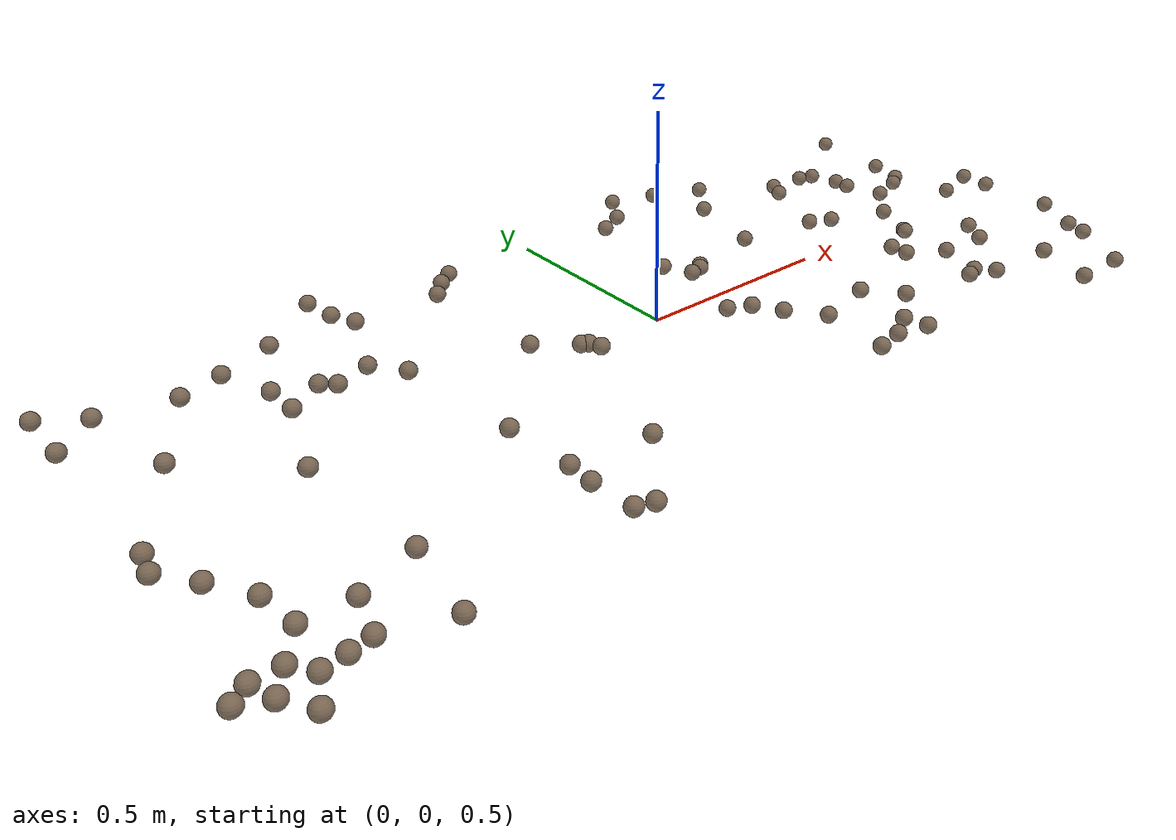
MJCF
<mujoco>
   <asset>
      <material name="dust_material" rgba="0.4 0.3 0.2 0.8" />
  </asset>
  <worldbody>
    <body name="ball_1" pos="-0.5133 -0.52 0.51">
      <freejoint/>
      <inertial mass="0.53" diaginertia="8.48e-05 8.48e-05 8.48e-05" pos="0 0 0"/>
      <geom type="sphere" size="0.02" material="dust_material"/>
    </body>
    <body name="ball_2" pos="0.7296 -0.3315 0.51">
      <freejoint/>
      <inertial mass="0.53" diaginertia="8.48e-05 8.48e-05 8.48e-05" pos="0 0 0"/>
      <geom type="sphere" size="0.02" material="dust_material"/>
    </body>
    <body name="ball_3" pos="-0.8236 0.1822 0.51">
      <freejoint/>
      <inertial mass="0.53" diaginertia="8.480000000000001e-05 8.480000000000001e-05 8.480000000000001e-05" pos="0 0 0"/>
      <geom type="sphere" size="0.02" material="dust_material"/>
   </body>
   <body name="ball_4" pos="0.4596 -0.2143 0.51">
      <freejoint/>
      <inertial mass="0.53" diaginertia="8.480000000000001e-05 8.480000000000001e-05 8.480000000000001e-05" pos="0 0 0"/>
      <geom type="sphere" size="0.02" material="dust_material"/>
   </body>
   <body name="ball_5" pos="0.152 -0.0756 0.51">
      <freejoint/>
      <inertial mass="0.53" diaginertia="8.480000000000001e-05 8.480000000000001e-05 8.480000000000001e-05" pos="0 0 0"/>
      <geom type="sphere" size="0.02" material="dust_material"/>
   </body>
   <body name="ball_6" pos="0.2438 -0.1683 0.51">
      <freejoint/>
      <inertial mass="0.53" diaginertia="8.480000000000001e-05 8.480000000000001e-05 8.480000000000001e-05" pos="0 0 0"/>
      <geom type="sphere" size="0.02" material="dust_material"/>
   </body>
   <body name="ball_7" pos="0.2067 -0.102 0.51">
      <freejoint/>
      <inertial mass="0.53" diaginertia="8.480000000000001e-05 8.480000000000001e-05 8.480000000000001e-05" pos="0 0 0"/>
      <geom type="sphere" size="0.02" material="dust_material"/>
   </body>
   <body name="ball_8" pos="-0.5191 -0.3404 0.51">
      <freejoint/>
      <inertial mass="0.53" diaginertia="8.480000000000001e-05 8.480000000000001e-05 8.480000000000001e-05" pos="0 0 0"/>
      <geom type="sphere" size="0.02" material="dust_material"/>
   </body>
   <body name="ball_9" pos="0.8695 0.056 0.51">
      <freejoint/>
      <inertial mass="0.53" diaginertia="8.480000000000001e-05 8.480000000000001e-05 8.480000000000001e-05" pos="0 0 0"/>
      <geom type="sphere" size="0.02" material="dust_material"/>
   </body>
   <body name="ball_10" pos="-0.8261 0.2712 0.51">
      <freejoint/>
      <inertial mass="0.53" diaginertia="8.480000000000001e-05 8.480000000000001e-05 8.480000000000001e-05" pos="0 0 0"/>
      <geom type="sphere" size="0.02" material="dust_material"/>
   </body>
   <body name="ball_11" pos="0.4689 0.5483 0.51">
      <freejoint/>
      <inertial mass="0.53" diaginertia="8.480000000000001e-05 8.480000000000001e-05 8.480000000000001e-05" pos="0 0 0"/>
      <geom type="sphere" size="0.02" material="dust_material"/>
   </body>
   <body name="ball_12" pos="-1.2387 -0.4799 0.51">
      <freejoint/>
      <inertial mass="0.53" diaginertia="8.480000000000001e-05 8.480000000000001e-05 8.480000000000001e-05" pos="0 0 0"/>
      <geom type="sphere" size="0.02" material="dust_material"/>
   </body>
   <body name="ball_13" pos="0.813 -0.0625 0.51">
      <freejoint/>
      <inertial mass="0.53" diaginertia="8.480000000000001e-05 8.480000000000001e-05 8.480000000000001e-05" pos="0 0 0"/>
      <geom type="sphere" size="0.02" material="dust_material"/>
   </body>
   <body name="ball_14" pos="0.7222 0.1131 0.51">
      <freejoint/>
      <inertial mass="0.53" diaginertia="8.480000000000001e-05 8.480000000000001e-05 8.480000000000001e-05" pos="0 0 0"/>
      <geom type="sphere" size="0.02" material="dust_material"/>
   </body>
   <body name="ball_15" pos="0.816 -0.0556 0.51">
      <freejoint/>
      <inertial mass="0.53" diaginertia="8.480000000000001e-05 8.480000000000001e-05 8.480000000000001e-05" pos="0 0 0"/>
      <geom type="sphere" size="0.02" material="dust_material"/>
   </body>
   <body name="ball_16" pos="-0.3298 -0.362 0.51">
      <freejoint/>
      <inertial mass="0.53" diaginertia="8.480000000000001e-05 8.480000000000001e-05 8.480000000000001e-05" pos="0 0 0"/>
      <geom type="sphere" size="0.02" material="dust_material"/>
   </body>
   <body name="ball_17" pos="-0.1847 -0.025 0.51">
      <freejoint/>
      <inertial mass="0.53" diaginertia="8.480000000000001e-05 8.480000000000001e-05 8.480000000000001e-05" pos="0 0 0"/>
      <geom type="sphere" size="0.02" material="dust_material"/>
   </body>
   <body name="ball_18" pos="0.9268 -0.2158 0.51">
      <freejoint/>
      <inertial mass="0.53" diaginertia="8.480000000000001e-05 8.480000000000001e-05 8.480000000000001e-05" pos="0 0 0"/>
      <geom type="sphere" size="0.02" material="dust_material"/>
   </body>
   <body name="ball_19" pos="-1.2776 -0.5062 0.51">
      <freejoint/>
      <inertial mass="0.53" diaginertia="8.480000000000001e-05 8.480000000000001e-05 8.480000000000001e-05" pos="0 0 0"/>
      <geom type="sphere" size="0.02" material="dust_material"/>
   </body>
   <body name="ball_20" pos="-0.7388 0.4535 0.51">
      <freejoint/>
      <inertial mass="0.53" diaginertia="8.480000000000001e-05 8.480000000000001e-05 8.480000000000001e-05" pos="0 0 0"/>
      <geom type="sphere" size="0.02" material="dust_material"/>
   </body>
   <body name="ball_21" pos="0.7086 -0.1051 0.51">
      <freejoint/>
      <inertial mass="0.53" diaginertia="8.480000000000001e-05 8.480000000000001e-05 8.480000000000001e-05" pos="0 0 0"/>
      <geom type="sphere" size="0.02" material="dust_material"/>
   </body>
   <body name="ball_22" pos="0.7723 0.375 0.51">
      <freejoint/>
      <inertial mass="0.53" diaginertia="8.480000000000001e-05 8.480000000000001e-05 8.480000000000001e-05" pos="0 0 0"/>
      <geom type="sphere" size="0.02" material="dust_material"/>
   </body>
   <body name="ball_23" pos="-0.2397 0.4991 0.51">
      <freejoint/>
      <inertial mass="0.53" diaginertia="8.480000000000001e-05 8.480000000000001e-05 8.480000000000001e-05" pos="0 0 0"/>
      <geom type="sphere" size="0.02" material="dust_material"/>
   </body>
   <body name="ball_24" pos="0.9622 0.1456 0.51">
      <freejoint/>
      <inertial mass="0.53" diaginertia="8.480000000000001e-05 8.480000000000001e-05 8.480000000000001e-05" pos="0 0 0"/>
      <geom type="sphere" size="0.02" material="dust_material"/>
   </body>
   <body name="ball_25" pos="-1.1435 -0.5267 0.51">
      <freejoint/>
      <inertial mass="0.53" diaginertia="8.480000000000001e-05 8.480000000000001e-05 8.480000000000001e-05" pos="0 0 0"/>
      <geom type="sphere" size="0.02" material="dust_material"/>
   </body>
   <body name="ball_26" pos="1.1215 0.0387 0.51">
      <freejoint/>
      <inertial mass="0.53" diaginertia="8.480000000000001e-05 8.480000000000001e-05 8.480000000000001e-05" pos="0 0 0"/>
      <geom type="sphere" size="0.02" material="dust_material"/>
   </body>
   <body name="ball_27" pos="-0.6188 0.2355 0.51">
      <freejoint/>
      <inertial mass="0.53" diaginertia="8.480000000000001e-05 8.480000000000001e-05 8.480000000000001e-05" pos="0 0 0"/>
      <geom type="sphere" size="0.02" material="dust_material"/>
   </body>
   <body name="ball_28" pos="1.2455 -0.198 0.51">
      <freejoint/>
      <inertial mass="0.53" diaginertia="8.480000000000001e-05 8.480000000000001e-05 8.480000000000001e-05" pos="0 0 0"/>
      <geom type="sphere" size="0.02" material="dust_material"/>
   </body>
   <body name="ball_29" pos="0.6668 0.1406 0.51">
      <freejoint/>
      <inertial mass="0.53" diaginertia="8.480000000000001e-05 8.480000000000001e-05 8.480000000000001e-05" pos="0 0 0"/>
      <geom type="sphere" size="0.02" material="dust_material"/>
   </body>
   <body name="ball_30" pos="0.7091 -0.1517 0.51">
      <freejoint/>
      <inertial mass="0.53" diaginertia="8.480000000000001e-05 8.480000000000001e-05 8.480000000000001e-05" pos="0 0 0"/>
      <geom type="sphere" size="0.02" material="dust_material"/>
   </body>
   <body name="ball_31" pos="1.165 -0.3689 0.51">
      <freejoint/>
      <inertial mass="0.53" diaginertia="8.480000000000001e-05 8.480000000000001e-05 8.480000000000001e-05" pos="0 0 0"/>
      <geom type="sphere" size="0.02" material="dust_material"/>
   </body>
   <body name="ball_32" pos="-1.1219 -0.4064 0.51">
      <freejoint/>
      <inertial mass="0.53" diaginertia="8.480000000000001e-05 8.480000000000001e-05 8.480000000000001e-05" pos="0 0 0"/>
      <geom type="sphere" size="0.02" material="dust_material"/>
   </body>
   <body name="ball_33" pos="0.226 0.4603 0.51">
      <freejoint/>
      <inertial mass="0.53" diaginertia="8.480000000000001e-05 8.480000000000001e-05 8.480000000000001e-05" pos="0 0 0"/>
      <geom type="sphere" size="0.02" material="dust_material"/>
   </body>
   <body name="ball_34" pos="0.935 -0.5185 0.51">
      <freejoint/>
      <inertial mass="0.53" diaginertia="8.480000000000001e-05 8.480000000000001e-05 8.480000000000001e-05" pos="0 0 0"/>
      <geom type="sphere" size="0.02" material="dust_material"/>
   </body>
   <body name="ball_35" pos="0.7971 -0.3613 0.51">
      <freejoint/>
      <inertial mass="0.53" diaginertia="8.480000000000001e-05 8.480000000000001e-05 8.480000000000001e-05" pos="0 0 0"/>
      <geom type="sphere" size="0.02" material="dust_material"/>
   </body>
   <body name="ball_36" pos="0.1872 0.188 0.51">
      <freejoint/>
      <inertial mass="0.53" diaginertia="8.480000000000001e-05 8.480000000000001e-05 8.480000000000001e-05" pos="0 0 0"/>
      <geom type="sphere" size="0.02" material="dust_material"/>
   </body>
   <body name="ball_37" pos="-0.8746 0.4021 0.51">
      <freejoint/>
      <inertial mass="0.53" diaginertia="8.480000000000001e-05 8.480000000000001e-05 8.480000000000001e-05" pos="0 0 0"/>
      <geom type="sphere" size="0.02" material="dust_material"/>
   </body>
   <body name="ball_38" pos="0.7982 -0.2086 0.51">
      <freejoint/>
      <inertial mass="0.53" diaginertia="8.480000000000001e-05 8.480000000000001e-05 8.480000000000001e-05" pos="0 0 0"/>
      <geom type="sphere" size="0.02" material="dust_material"/>
   </body>
   <body name="ball_39" pos="-0.5657 0.4921 0.51">
      <freejoint/>
      <inertial mass="0.53" diaginertia="8.480000000000001e-05 8.480000000000001e-05 8.480000000000001e-05" pos="0 0 0"/>
      <geom type="sphere" size="0.02" material="dust_material"/>
   </body>
   <body name="ball_40" pos="-1.1917 -0.2142 0.51">
      <freejoint/>
      <inertial mass="0.53" diaginertia="8.480000000000001e-05 8.480000000000001e-05 8.480000000000001e-05" pos="0 0 0"/>
      <geom type="sphere" size="0.02" material="dust_material"/>
   </body>
   <body name="ball_41" pos="-0.8987 -0.0272 0.51">
      <freejoint/>
      <inertial mass="0.53" diaginertia="8.480000000000001e-05 8.480000000000001e-05 8.480000000000001e-05" pos="0 0 0"/>
      <geom type="sphere" size="0.02" material="dust_material"/>
   </body>
   <body name="ball_42" pos="-1.2496 -0.1352 0.51">
      <freejoint/>
      <inertial mass="0.53" diaginertia="8.480000000000001e-05 8.480000000000001e-05 8.480000000000001e-05" pos="0 0 0"/>
      <geom type="sphere" size="0.02" material="dust_material"/>
   </body>
   <body name="ball_43" pos="0.352 0.5842 0.51">
      <freejoint/>
      <inertial mass="0.53" diaginertia="8.480000000000001e-05 8.480000000000001e-05 8.480000000000001e-05" pos="0 0 0"/>
      <geom type="sphere" size="0.02" material="dust_material"/>
   </body>
   <body name="ball_44" pos="1.1809 -0.315 0.51">
      <freejoint/>
      <inertial mass="0.53" diaginertia="8.480000000000001e-05 8.480000000000001e-05 8.480000000000001e-05" pos="0 0 0"/>
      <geom type="sphere" size="0.02" material="dust_material"/>
   </body>
   <body name="ball_45" pos="0.9336 0.2428 0.51">
      <freejoint/>
      <inertial mass="0.53" diaginertia="8.480000000000001e-05 8.480000000000001e-05 8.480000000000001e-05" pos="0 0 0"/>
      <geom type="sphere" size="0.02" material="dust_material"/>
   </body>
   <body name="ball_46" pos="-1.1779 -0.4799 0.51">
      <freejoint/>
      <inertial mass="0.53" diaginertia="8.480000000000001e-05 8.480000000000001e-05 8.480000000000001e-05" pos="0 0 0"/>
      <geom type="sphere" size="0.02" material="dust_material"/>
   </body>
   <body name="ball_47" pos="0.9692 -0.1498 0.51">
      <freejoint/>
      <inertial mass="0.53" diaginertia="8.480000000000001e-05 8.480000000000001e-05 8.480000000000001e-05" pos="0 0 0"/>
      <geom type="sphere" size="0.02" material="dust_material"/>
   </body>
   <body name="ball_48" pos="-0.8722 -0.3656 0.51">
      <freejoint/>
      <inertial mass="0.53" diaginertia="8.480000000000001e-05 8.480000000000001e-05 8.480000000000001e-05" pos="0 0 0"/>
      <geom type="sphere" size="0.02" material="dust_material"/>
   </body>
   <body name="ball_49" pos="-1.1338 -0.3069 0.51">
      <freejoint/>
      <inertial mass="0.53" diaginertia="8.480000000000001e-05 8.480000000000001e-05 8.480000000000001e-05" pos="0 0 0"/>
      <geom type="sphere" size="0.02" material="dust_material"/>
   </body>
   <body name="ball_50" pos="0.7495 0.332 0.51">
      <freejoint/>
      <inertial mass="0.53" diaginertia="8.480000000000001e-05 8.480000000000001e-05 8.480000000000001e-05" pos="0 0 0"/>
      <geom type="sphere" size="0.02" material="dust_material"/>
   </body>
   <body name="ball_51" pos="-1.2433 0.4762 0.51">
      <freejoint/>
      <inertial mass="0.53" diaginertia="8.480000000000001e-05 8.480000000000001e-05 8.480000000000001e-05" pos="0 0 0"/>
      <geom type="sphere" size="0.02" material="dust_material"/>
   </body>
   <body name="ball_52" pos="0.8728 0.37 0.51">
      <freejoint/>
      <inertial mass="0.53" diaginertia="8.480000000000001e-05 8.480000000000001e-05 8.480000000000001e-05" pos="0 0 0"/>
      <geom type="sphere" size="0.02" material="dust_material"/>
   </body>
   <body name="ball_53" pos="1.1139 0.2892 0.51">
      <freejoint/>
      <inertial mass="0.53" diaginertia="8.480000000000001e-05 8.480000000000001e-05 8.480000000000001e-05" pos="0 0 0"/>
      <geom type="sphere" size="0.02" material="dust_material"/>
   </body>
   <body name="ball_54" pos="-0.299 0.0836 0.51">
      <freejoint/>
      <inertial mass="0.53" diaginertia="8.480000000000001e-05 8.480000000000001e-05 8.480000000000001e-05" pos="0 0 0"/>
      <geom type="sphere" size="0.02" material="dust_material"/>
   </body>
   <body name="ball_55" pos="0.5281 -0.2972 0.51">
      <freejoint/>
      <inertial mass="0.53" diaginertia="8.480000000000001e-05 8.480000000000001e-05 8.480000000000001e-05" pos="0 0 0"/>
      <geom type="sphere" size="0.02" material="dust_material"/>
   </body>
   <body name="ball_56" pos="-1.2423 0.3297 0.51">
      <freejoint/>
      <inertial mass="0.53" diaginertia="8.480000000000001e-05 8.480000000000001e-05 8.480000000000001e-05" pos="0 0 0"/>
      <geom type="sphere" size="0.02" material="dust_material"/>
   </body>
   <body name="ball_57" pos="-1.099 0.161 0.51">
      <freejoint/>
      <inertial mass="0.53" diaginertia="8.480000000000001e-05 8.480000000000001e-05 8.480000000000001e-05" pos="0 0 0"/>
      <geom type="sphere" size="0.02" material="dust_material"/>
   </body>
   <body name="ball_58" pos="0.2537 0.1255 0.51">
      <freejoint/>
      <inertial mass="0.53" diaginertia="8.480000000000001e-05 8.480000000000001e-05 8.480000000000001e-05" pos="0 0 0"/>
      <geom type="sphere" size="0.02" material="dust_material"/>
   </body>
   <body name="ball_59" pos="0.2192 0.1168 0.51">
      <freejoint/>
      <inertial mass="0.53" diaginertia="8.480000000000001e-05 8.480000000000001e-05 8.480000000000001e-05" pos="0 0 0"/>
      <geom type="sphere" size="0.02" material="dust_material"/>
   </body>
   <body name="ball_60" pos="-1.0115 -0.4116 0.51">
      <freejoint/>
      <inertial mass="0.53" diaginertia="8.480000000000001e-05 8.480000000000001e-05 8.480000000000001e-05" pos="0 0 0"/>
      <geom type="sphere" size="0.02" material="dust_material"/>
   </body>
   <body name="ball_61" pos="1.2454 0.0717 0.51">
      <freejoint/>
      <inertial mass="0.53" diaginertia="8.480000000000001e-05 8.480000000000001e-05 8.480000000000001e-05" pos="0 0 0"/>
      <geom type="sphere" size="0.02" material="dust_material"/>
   </body>
   <body name="ball_62" pos="-0.9043 -0.5586 0.51">
      <freejoint/>
      <inertial mass="0.53" diaginertia="8.480000000000001e-05 8.480000000000001e-05 8.480000000000001e-05" pos="0 0 0"/>
      <geom type="sphere" size="0.02" material="dust_material"/>
   </body>
   <body name="ball_63" pos="-0.5318 -0.1629 0.51">
      <freejoint/>
      <inertial mass="0.53" diaginertia="8.480000000000001e-05 8.480000000000001e-05 8.480000000000001e-05" pos="0 0 0"/>
      <geom type="sphere" size="0.02" material="dust_material"/>
   </body>
   <body name="ball_64" pos="-1.146 0.4098 0.51">
      <freejoint/>
      <inertial mass="0.53" diaginertia="8.480000000000001e-05 8.480000000000001e-05 8.480000000000001e-05" pos="0 0 0"/>
      <geom type="sphere" size="0.02" material="dust_material"/>
   </body>
   <body name="ball_65" pos="0.3067 -0.2507 0.51">
      <freejoint/>
      <inertial mass="0.53" diaginertia="8.480000000000001e-05 8.480000000000001e-05 8.480000000000001e-05" pos="0 0 0"/>
      <geom type="sphere" size="0.02" material="dust_material"/>
   </body>
   <body name="ball_66" pos="0.4401 -0.4311 0.51">
      <freejoint/>
      <inertial mass="0.53" diaginertia="8.480000000000001e-05 8.480000000000001e-05 8.480000000000001e-05" pos="0 0 0"/>
      <geom type="sphere" size="0.02" material="dust_material"/>
   </body>
   <body name="ball_67" pos="1.141 0.5105 0.51">
      <freejoint/>
      <inertial mass="0.53" diaginertia="8.480000000000001e-05 8.480000000000001e-05 8.480000000000001e-05" pos="0 0 0"/>
      <geom type="sphere" size="0.02" material="dust_material"/>
   </body>
   <body name="ball_68" pos="-1.0905 -0.5193 0.51">
      <freejoint/>
      <inertial mass="0.53" diaginertia="8.480000000000001e-05 8.480000000000001e-05 8.480000000000001e-05" pos="0 0 0"/>
      <geom type="sphere" size="0.02" material="dust_material"/>
   </body>
   <body name="ball_69" pos="0.9853 -0.3705 0.51">
      <freejoint/>
      <inertial mass="0.53" diaginertia="8.480000000000001e-05 8.480000000000001e-05 8.480000000000001e-05" pos="0 0 0"/>
      <geom type="sphere" size="0.02" material="dust_material"/>
   </body>
   <body name="ball_70" pos="-0.5785 0.58 0.51">
      <freejoint/>
      <inertial mass="0.53" diaginertia="8.480000000000001e-05 8.480000000000001e-05 8.480000000000001e-05" pos="0 0 0"/>
      <geom type="sphere" size="0.02" material="dust_material"/>
   </body>
   <body name="ball_71" pos="0.9347 0.2853 0.51">
      <freejoint/>
      <inertial mass="0.53" diaginertia="8.480000000000001e-05 8.480000000000001e-05 8.480000000000001e-05" pos="0 0 0"/>
      <geom type="sphere" size="0.02" material="dust_material"/>
   </body>
   <body name="ball_72" pos="-0.5226 -0.4091 0.51">
      <freejoint/>
      <inertial mass="0.53" diaginertia="8.480000000000001e-05 8.480000000000001e-05 8.480000000000001e-05" pos="0 0 0"/>
      <geom type="sphere" size="0.02" material="dust_material"/>
   </body>
   <body name="ball_73" pos="-0.5383 0.4284 0.51">
      <freejoint/>
      <inertial mass="0.53" diaginertia="8.480000000000001e-05 8.480000000000001e-05 8.480000000000001e-05" pos="0 0 0"/>
      <geom type="sphere" size="0.02" material="dust_material"/>
   </body>
   <body name="ball_74" pos="-1.0404 -0.5099 0.51">
      <freejoint/>
      <inertial mass="0.53" diaginertia="8.480000000000001e-05 8.480000000000001e-05 8.480000000000001e-05" pos="0 0 0"/>
      <geom type="sphere" size="0.02" material="dust_material"/>
   </body>
   <body name="ball_75" pos="-0.5638 0.1599 0.51">
      <freejoint/>
      <inertial mass="0.53" diaginertia="8.480000000000001e-05 8.480000000000001e-05 8.480000000000001e-05" pos="0 0 0"/>
      <geom type="sphere" size="0.02" material="dust_material"/>
   </body>
   <body name="ball_76" pos="1.0896 0.1973 0.51">
      <freejoint/>
      <inertial mass="0.53" diaginertia="8.480000000000001e-05 8.480000000000001e-05 8.480000000000001e-05" pos="0 0 0"/>
      <geom type="sphere" size="0.02" material="dust_material"/>
   </body>
   <body name="ball_77" pos="0.4583 0.1749 0.51">
      <freejoint/>
      <inertial mass="0.53" diaginertia="8.480000000000001e-05 8.480000000000001e-05 8.480000000000001e-05" pos="0 0 0"/>
      <geom type="sphere" size="0.02" material="dust_material"/>
   </body>
   <body name="ball_78" pos="0.761 -0.3208 0.51">
      <freejoint/>
      <inertial mass="0.53" diaginertia="8.480000000000001e-05 8.480000000000001e-05 8.480000000000001e-05" pos="0 0 0"/>
      <geom type="sphere" size="0.02" material="dust_material"/>
   </body>
   <body name="ball_79" pos="1.0526 0.1739 0.51">
      <freejoint/>
      <inertial mass="0.53" diaginertia="8.480000000000001e-05 8.480000000000001e-05 8.480000000000001e-05" pos="0 0 0"/>
      <geom type="sphere" size="0.02" material="dust_material"/>
   </body>
   <body name="ball_80" pos="1.2437 -0.0054 0.51">
      <freejoint/>
      <inertial mass="0.53" diaginertia="8.480000000000001e-05 8.480000000000001e-05 8.480000000000001e-05" pos="0 0 0"/>
      <geom type="sphere" size="0.02" material="dust_material"/>
   </body>
   <body name="ball_81" pos="0.511 0.3855 0.51">
      <freejoint/>
      <inertial mass="0.53" diaginertia="8.480000000000001e-05 8.480000000000001e-05 8.480000000000001e-05" pos="0 0 0"/>
      <geom type="sphere" size="0.02" material="dust_material"/>
   </body>
   <body name="ball_82" pos="-0.736 0.2346 0.51">
      <freejoint/>
      <inertial mass="0.53" diaginertia="8.480000000000001e-05 8.480000000000001e-05 8.480000000000001e-05" pos="0 0 0"/>
      <geom type="sphere" size="0.02" material="dust_material"/>
   </body>
   <body name="ball_83" pos="-1.2373 -0.0765 0.51">
      <freejoint/>
      <inertial mass="0.53" diaginertia="8.480000000000001e-05 8.480000000000001e-05 8.480000000000001e-05" pos="0 0 0"/>
      <geom type="sphere" size="0.02" material="dust_material"/>
   </body>
   <body name="ball_84" pos="0.2949 0.4965 0.51">
      <freejoint/>
      <inertial mass="0.53" diaginertia="8.480000000000001e-05 8.480000000000001e-05 8.480000000000001e-05" pos="0 0 0"/>
      <geom type="sphere" size="0.02" material="dust_material"/>
   </body>
   <body name="ball_85" pos="-0.3211 0.4232 0.51">
      <freejoint/>
      <inertial mass="0.53" diaginertia="8.480000000000001e-05 8.480000000000001e-05 8.480000000000001e-05" pos="0 0 0"/>
      <geom type="sphere" size="0.02" material="dust_material"/>
   </body>
   <body name="ball_86" pos="-1.2201 -0.5353 0.51">
      <freejoint/>
      <inertial mass="0.53" diaginertia="8.480000000000001e-05 8.480000000000001e-05 8.480000000000001e-05" pos="0 0 0"/>
      <geom type="sphere" size="0.02" material="dust_material"/>
   </body>
   <body name="ball_87" pos="0.2634 0.1362 0.51">
      <freejoint/>
      <inertial mass="0.53" diaginertia="8.480000000000001e-05 8.480000000000001e-05 8.480000000000001e-05" pos="0 0 0"/>
      <geom type="sphere" size="0.02" material="dust_material"/>
   </body>
   <body name="ball_88" pos="-0.2807 0.4685 0.51">
      <freejoint/>
      <inertial mass="0.53" diaginertia="8.480000000000001e-05 8.480000000000001e-05 8.480000000000001e-05" pos="0 0 0"/>
      <geom type="sphere" size="0.02" material="dust_material"/>
   </body>
   <body name="ball_89" pos="0.2857 -0.4254 0.51">
      <freejoint/>
      <inertial mass="0.53" diaginertia="8.480000000000001e-05 8.480000000000001e-05 8.480000000000001e-05" pos="0 0 0"/>
      <geom type="sphere" size="0.02" material="dust_material"/>
   </body>
   <body name="ball_90" pos="1.0732 -0.5175 0.51">
      <freejoint/>
      <inertial mass="0.53" diaginertia="8.480000000000001e-05 8.480000000000001e-05 8.480000000000001e-05" pos="0 0 0"/>
      <geom type="sphere" size="0.02" material="dust_material"/>
   </body>
   <body name="ball_91" pos="0.5948 0.4944 0.51">
      <freejoint/>
      <inertial mass="0.53" diaginertia="8.480000000000001e-05 8.480000000000001e-05 8.480000000000001e-05" pos="0 0 0"/>
      <geom type="sphere" size="0.02" material="dust_material"/>
   </body>
   <body name="ball_92" pos="-0.7053 0.2079 0.51">
      <freejoint/>
      <inertial mass="0.53" diaginertia="8.480000000000001e-05 8.480000000000001e-05 8.480000000000001e-05" pos="0 0 0"/>
      <geom type="sphere" size="0.02" material="dust_material"/>
   </body>
   <body name="ball_93" pos="-0.4716 -0.5335 0.51">
      <freejoint/>
      <inertial mass="0.53" diaginertia="8.480000000000001e-05 8.480000000000001e-05 8.480000000000001e-05" pos="0 0 0"/>
      <geom type="sphere" size="0.02" material="dust_material"/>
   </body>
   <body name="ball_94" pos="-0.1977 0.0029 0.51">
      <freejoint/>
      <inertial mass="0.53" diaginertia="8.480000000000001e-05 8.480000000000001e-05 8.480000000000001e-05" pos="0 0 0"/>
      <geom type="sphere" size="0.02" material="dust_material"/>
   </body>
   <body name="ball_95" pos="0.4265 -0.3728 0.51">
      <freejoint/>
      <inertial mass="0.53" diaginertia="8.480000000000001e-05 8.480000000000001e-05 8.480000000000001e-05" pos="0 0 0"/>
      <geom type="sphere" size="0.02" material="dust_material"/>
   </body>
   <body name="ball_96" pos="0.9133 0.3582 0.51">
      <freejoint/>
      <inertial mass="0.53" diaginertia="8.480000000000001e-05 8.480000000000001e-05 8.480000000000001e-05" pos="0 0 0"/>
      <geom type="sphere" size="0.02" material="dust_material"/>
   </body>
   <body name="ball_97" pos="-1.1802 -0.5982 0.51">
      <freejoint/>
      <inertial mass="0.53" diaginertia="8.480000000000001e-05 8.480000000000001e-05 8.480000000000001e-05" pos="0 0 0"/>
      <geom type="sphere" size="0.02" material="dust_material"/>
   </body>
   <body name="ball_98" pos="-0.9785 0.3714 0.51">
      <freejoint/>
      <inertial mass="0.53" diaginertia="8.480000000000001e-05 8.480000000000001e-05 8.480000000000001e-05" pos="0 0 0"/>
      <geom type="sphere" size="0.02" material="dust_material"/>
   </body>
   <body name="ball_99" pos="0.3587 -0.4117 0.51">
      <freejoint/>
      <inertial mass="0.53" diaginertia="8.480000000000001e-05 8.480000000000001e-05 8.480000000000001e-05" pos="0 0 0"/>
      <geom type="sphere" size="0.02" material="dust_material"/>
   </body>
   <body name="ball_100" pos="-0.2126 0.0115 0.51">
      <freejoint/>
      <inertial mass="0.53" diaginertia="8.480000000000001e-05 8.480000000000001e-05 8.480000000000001e-05" pos="0 0 0"/>
      <geom type="sphere" size="0.02" material="dust_material"/>
   </body>
  </worldbody>
</mujoco>
